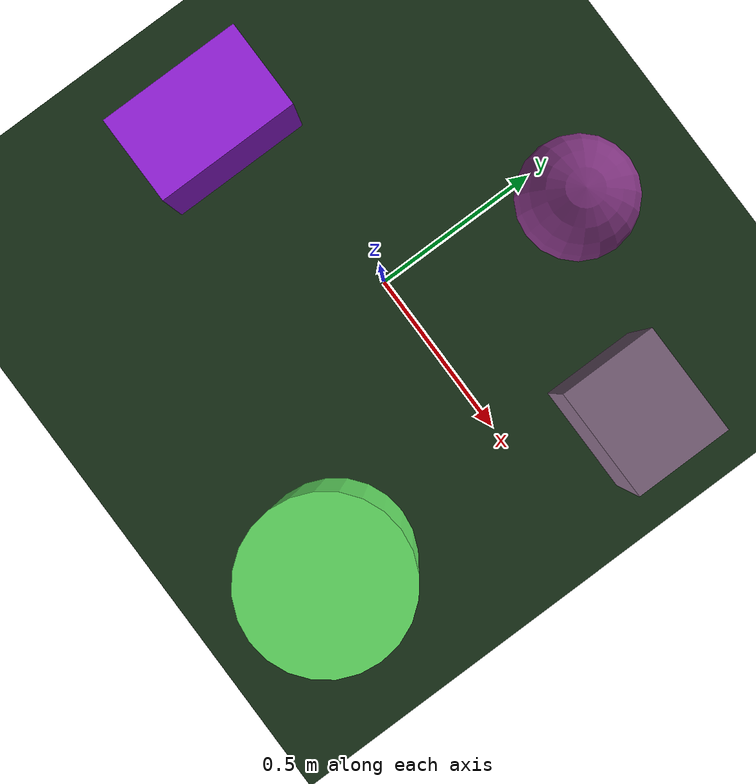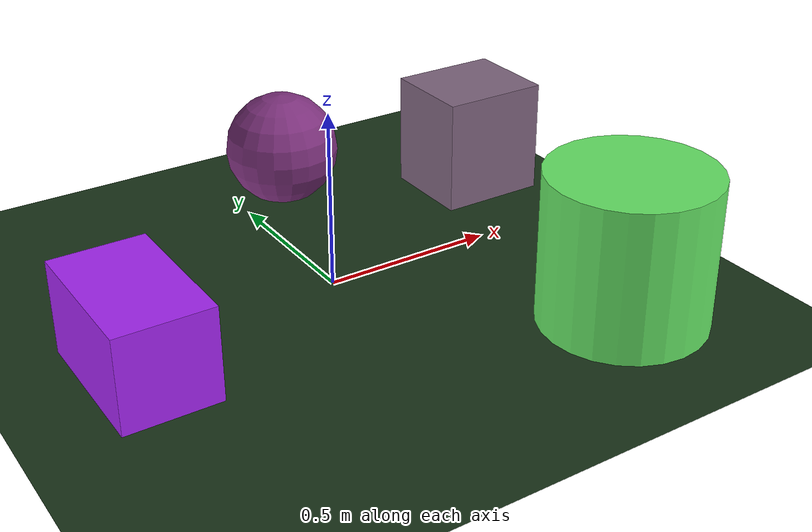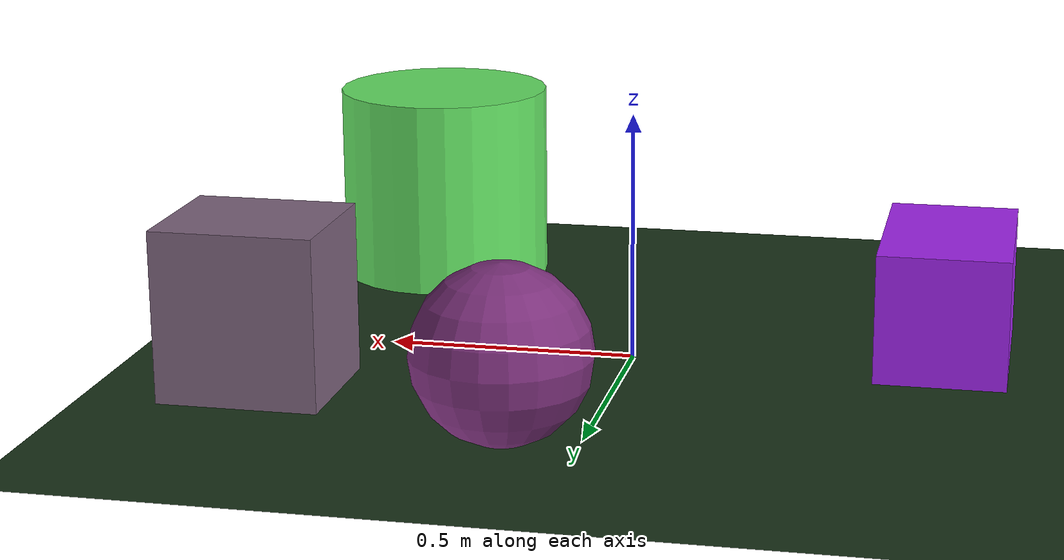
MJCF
<mujoco>
   <asset>
<texture type="skybox" builtin="gradient" rgb1="0.0 0.3 0.7" rgb2="1.0 0.0 0.4" width="256" height="256"/>
<texture name="flat_0" builtin="flat" rgb1="0.5 0.2 0.5" rgb2="0.5 0.2 0.5"  width="200" height="200"/>
<texture name="gradient_1" builtin="gradient" rgb1="0.8 0.1 0.9" rgb2="0.5 0.2 1.0" width="200" height="200"/>
<texture name="flat_2" builtin="flat" rgb1="0.5 0.4 0.5" rgb2="0.5 0.4 0.5"  width="200" height="200"/>
<texture name="checker_3" builtin="checker" rgb1="0.2 1.0 0.3" rgb2="0.6 0.8 0.5" width="200" height="200"/><material name="flat_0_mat" reflectance="0" texture="flat_0" texuniform="true"/>
<material name="gradient_1_mat" reflectance="0" texture="gradient_1" texuniform="true"/>
<material name="flat_2_mat" reflectance="0" texture="flat_2" texuniform="true"/>
<material name="checker_3_mat" reflectance="0" texrepeat="10 10" texture="checker_3" texuniform="false" />
   </asset>

   <worldbody>
      <light diffuse=".9 .9 .9" pos="0 0 3" dir="0 0 -1"/>
     <geom type="plane" size="1 1 0.1" rgba="0.1 0.2 0.1 1"/>
<geom type="sphere" pos="0.14 0.54 0.17" size="0.17 0.17 0.17" material="flat_0_mat" />
<geom type="box" pos="-0.62 -0.13 0.13" size="0.13 0.21 0.13" material="gradient_1_mat" />
<geom type="box" pos="0.68 0.32 0.17" size="0.16 0.14 0.17" material="flat_2_mat" />
<geom type="cylinder" pos="0.54 -0.57 0.21" size="0.23 0.21 0.21" material="checker_3_mat" /><camera euler="60 0 180" fovy="60" name="camera_a" pos="0 -1.5 1"></camera>   </worldbody>
</mujoco>
